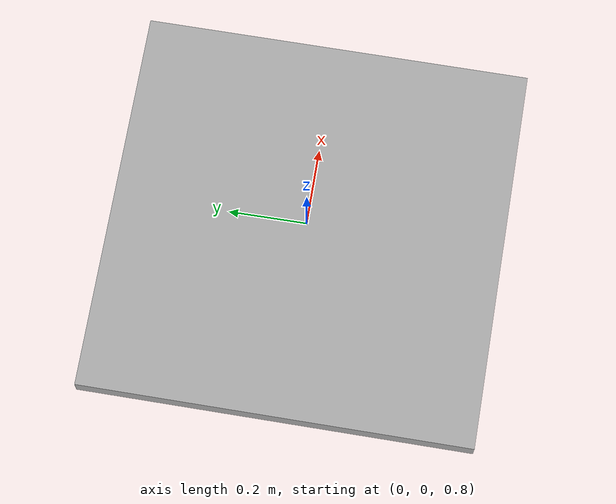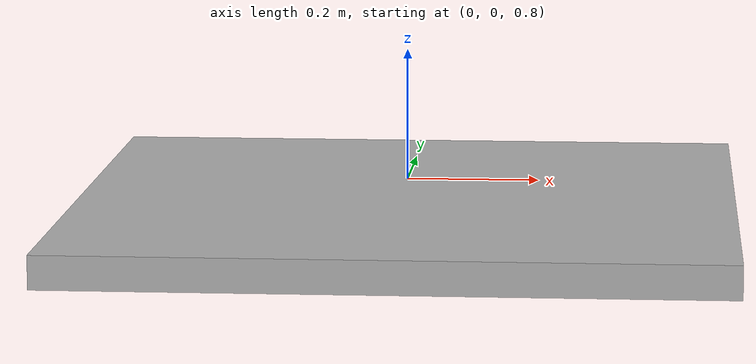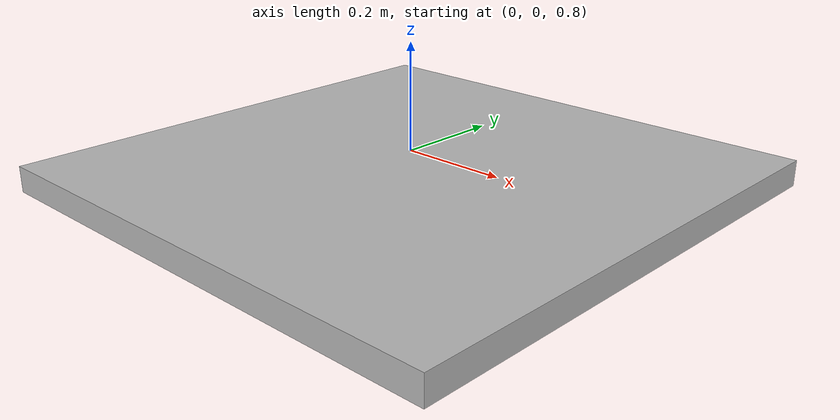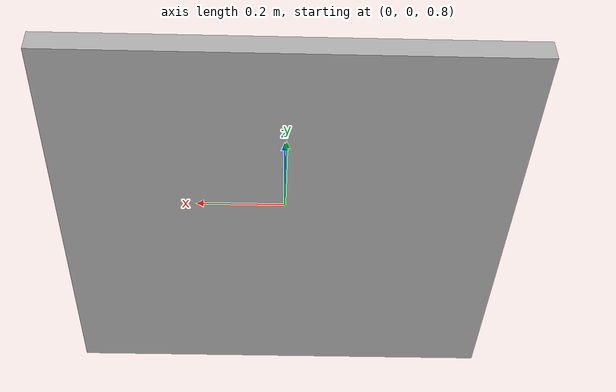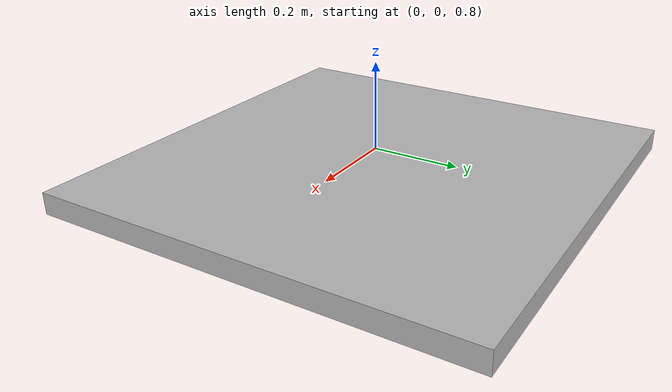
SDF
<?xml version="1.0" ?>
<sdf version="1.5">
  <model name="Red Circular Target">
    <pose>0 0 0.75  0 0 0</pose>
    <static>false</static>
    <link name="link">
      <inertial>
        <mass>40.0</mass>
        <inertia>
          <ixx>1</ixx>
          <ixy>0</ixy>
          <ixz>0</ixz>
          <iyy>1</iyy>
          <iyz>0</iyz>
          <izz>1</izz>
        </inertia>
      </inertial>

      <collision name="collision">
        <geometry>
          <box>
              <size>1.00 1.00 0.05</size>
          </box>
        </geometry>
	<surface>
          <contact>
            <ode>
              <max_vel>0.1</max_vel>
              <min_depth>0.001</min_depth>
            </ode>
          </contact>
        </surface>
      </collision>
      <visual name="visual">
        <geometry>
          <mesh>
            <uri>model://Circular Target/meshes/Circ_Target.dae</uri>
          </mesh>
	</geometry>
      </visual>
    </link>
  </model>
</sdf>
